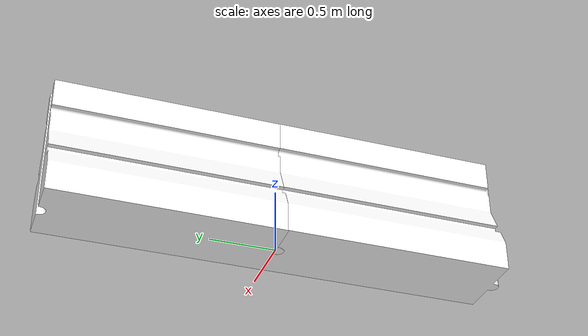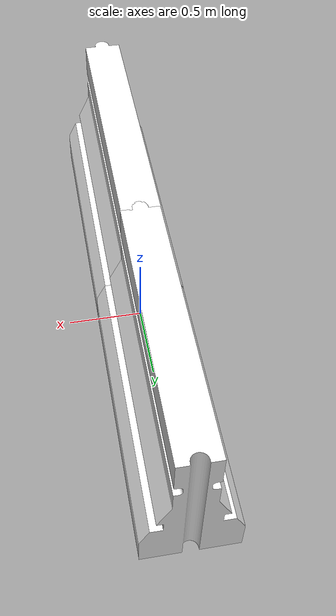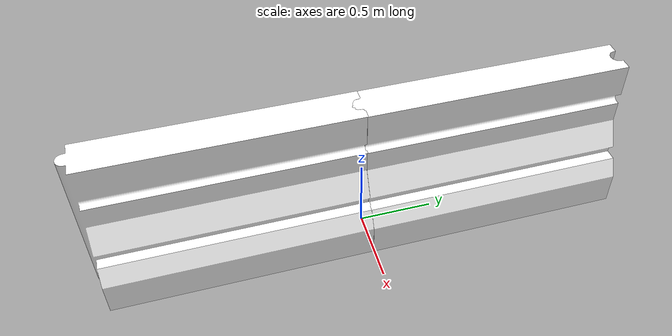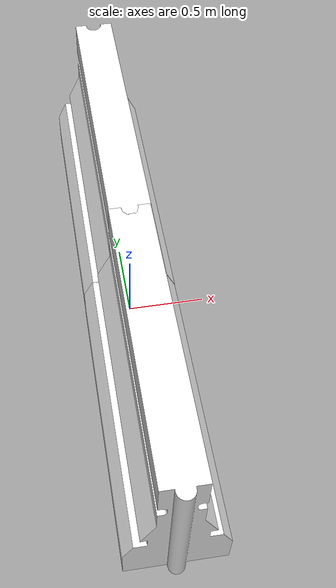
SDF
<?xml version='1.0'?>
<sdf version='1.6'>
  <model name='double_barrier'>
    <model name='drc_practice_white_jersey_barrier'>
      <static>1</static>
      <link name='link'>
        <visual name='visual'>
          <geometry>
            <mesh>
              <uri>model://drc_practice_white_jersey_barrier/meshes/jersey_barrier.dae</uri>
            </mesh>
          </geometry>
        </visual>
        <collision name='collision'>
          <geometry>
            <mesh>
              <uri>model://drc_practice_white_jersey_barrier/meshes/jersey_barrier.dae</uri>
            </mesh>
          </geometry>
        </collision>
      </link>
      <pose frame=''>0.005043 0.865232 0 0 -0 0</pose>
    </model>
    <model name='drc_practice_white_jersey_barrier_clone'>
      <static>1</static>
      <link name='link'>
        <visual name='visual'>
          <geometry>
            <mesh>
              <uri>model://drc_practice_white_jersey_barrier/meshes/jersey_barrier.dae</uri>
            </mesh>
          </geometry>
        </visual>
        <collision name='collision'>
          <geometry>
            <mesh>
              <uri>model://drc_practice_white_jersey_barrier/meshes/jersey_barrier.dae</uri>
            </mesh>
          </geometry>
        </collision>
      </link>
      <pose frame=''>-0.005041 -0.865231 -0 0 -0 0</pose>
    </model>
    <static>0</static>
    <allow_auto_disable>1</allow_auto_disable>
  </model>
</sdf>
